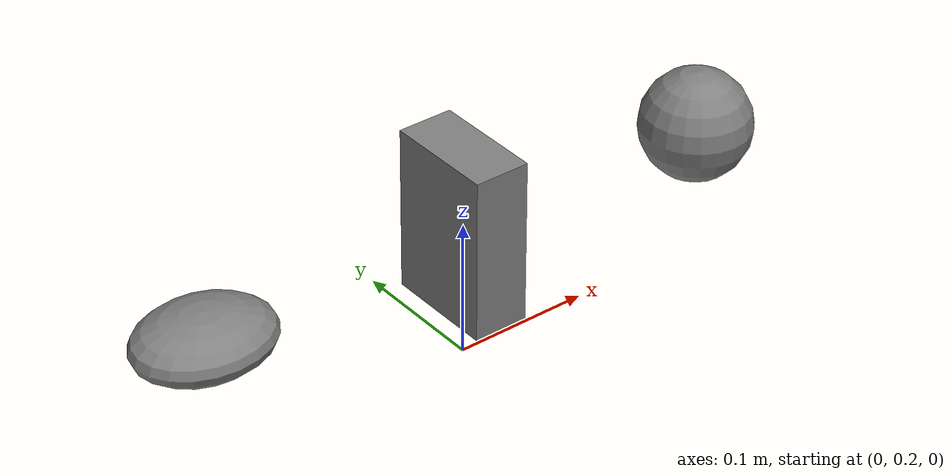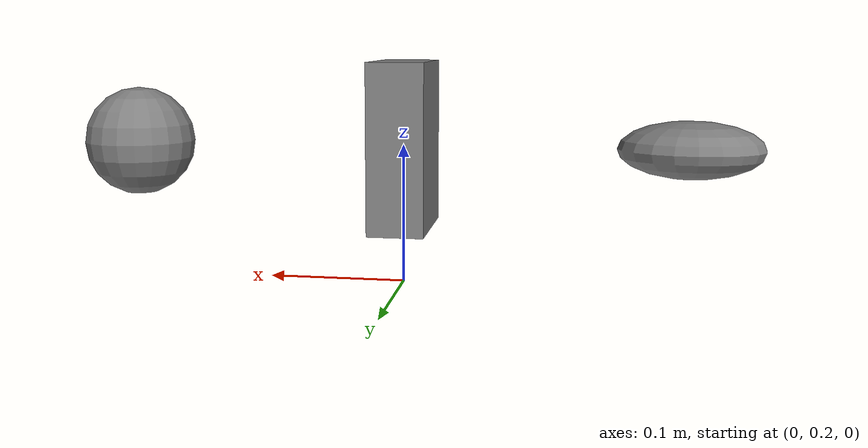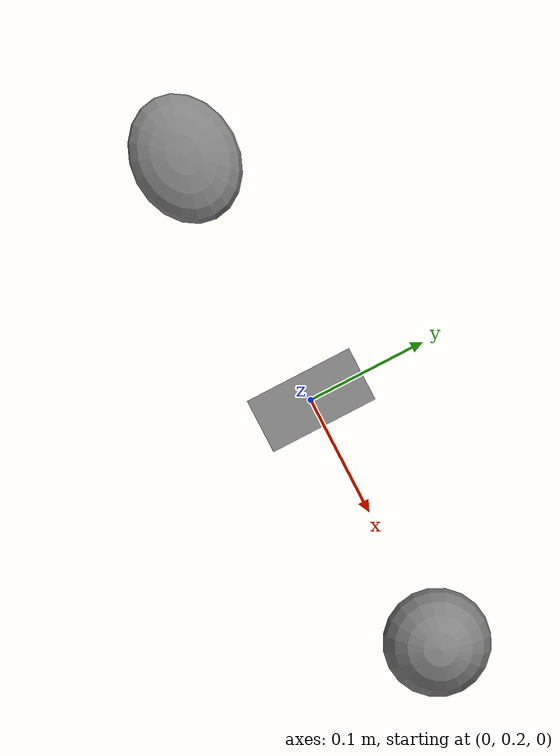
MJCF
<mujoco model="Dummy Model">
    <worldbody>
        <body name="obj1" pos="0.2 0.2 .1">
            <geom type="sphere" size="0.04" condim="6" friction="1 .001 .001"/>
        </body>

        <body name="obj2" pos="0 0.2 .1">
            <geom type="box" size="0.02 0.04 0.06"/>
        </body>

        <body name="obj3" pos="-0.2 0.2 .1">
            <geom type="ellipsoid" size="0.05 0.04 0.02" condim="6" friction="1 .001 .001"/>
        </body>
    </worldbody>
</mujoco>
